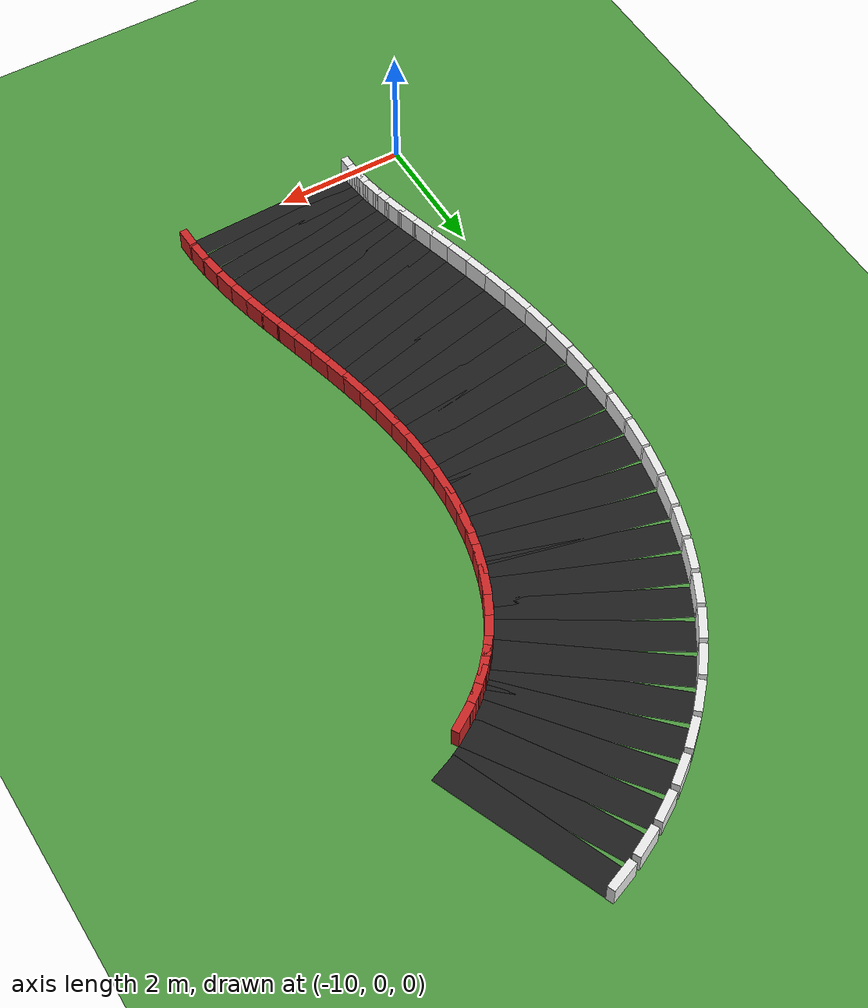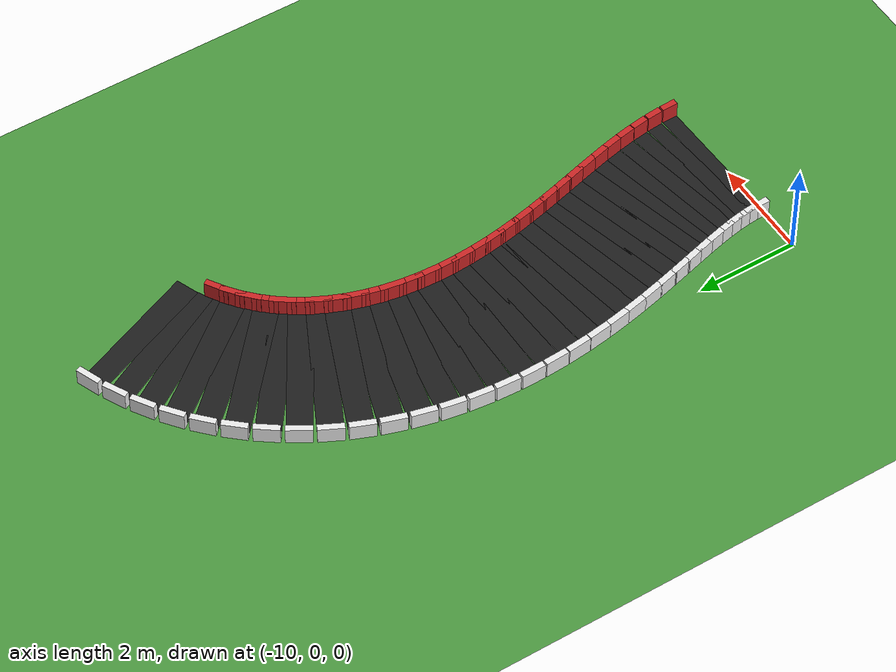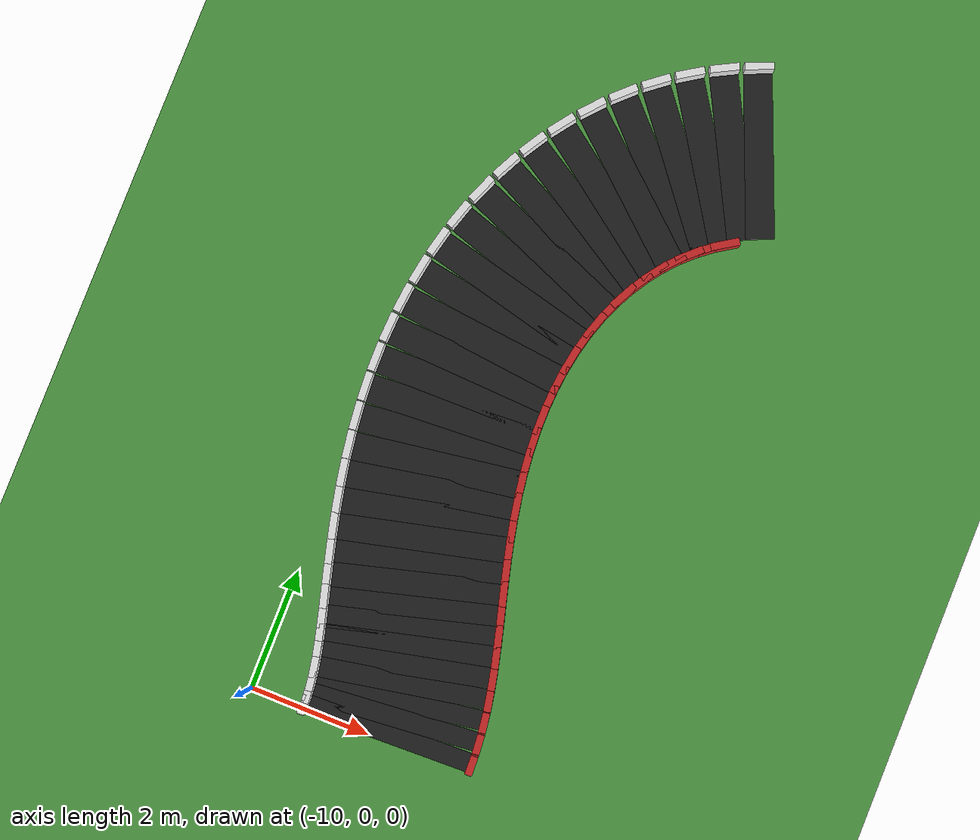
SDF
<sdf version="1.7">
 <world name="rl_track">
  <include><uri>model://sun</uri></include>
  <model name="ground">
   <static>true</static>
   <link name="link">
    <collision name="collision">
     <geometry><plane><normal>0 0 1</normal><size>40 40</size></plane></geometry>
    </collision>
    <visual name="visual">
     <geometry><plane><normal>0 0 1</normal><size>40 40</size></plane></geometry>
     <material>
      <script><uri>file://media/materials/scripts/gazebo.material</uri><name>Gazebo/Grass</name></script>
     </material>
    </visual>
   </link>
  </model>
  <model name="track">
   <static>true</static>
   <link name="road_058">
    <pose>-5.569259 10.929562 0.003000 0 0 -2.758059784</pose>
    <visual name="visual">
     <geometry><box><size>0.469884 2.700000 0.006000</size></box></geometry>
     <material>
      <script><uri>file://media/materials/scripts/gazebo.material</uri><name>Gazebo/Black</name></script>
     </material>
    </visual>
   </link>
   <link name="inner_wall_058">
    <pose>-6.096879 12.237123 0.175000 0 0 -2.758059784</pose>
    <collision name="collision">
     <geometry><box><size>0.479884 0.120000 0.350000</size></box></geometry>
     <surface><contact><ode><kp>1000000</kp><kd>10</kd></ode></contact></surface>
    </collision>
    <visual name="visual">
     <geometry><box><size>0.479884 0.120000 0.350000</size></box></geometry>
     <material>
      <script><uri>file://media/materials/scripts/gazebo.material</uri><name>Gazebo/White</name></script>
     </material>
    </visual>
   </link>
   <link name="road_059">
    <pose>-5.959293 10.750622 0.003000 0 0 -2.664796579</pose>
    <visual name="visual">
     <geometry><box><size>0.469294 2.700000 0.006000</size></box></geometry>
     <material>
      <script><uri>file://media/materials/scripts/gazebo.material</uri><name>Gazebo/Black</name></script>
     </material>
    </visual>
   </link>
   <link name="inner_wall_059">
    <pose>-6.606391 12.003364 0.175000 0 0 -2.664796579</pose>
    <collision name="collision">
     <geometry><box><size>0.479294 0.120000 0.350000</size></box></geometry>
     <surface><contact><ode><kp>1000000</kp><kd>10</kd></ode></contact></surface>
    </collision>
    <visual name="visual">
     <geometry><box><size>0.479294 0.120000 0.350000</size></box></geometry>
     <material>
      <script><uri>file://media/materials/scripts/gazebo.material</uri><name>Gazebo/White</name></script>
     </material>
    </visual>
   </link>
   <link name="road_060">
    <pose>-6.330665 10.536209 0.003000 0 0 -2.571191177</pose>
    <visual name="visual">
     <geometry><box><size>0.469294 2.700000 0.006000</size></box></geometry>
     <material>
      <script><uri>file://media/materials/scripts/gazebo.material</uri><name>Gazebo/Black</name></script>
     </material>
    </visual>
   </link>
   <link name="inner_wall_060">
    <pose>-7.092023 11.722984 0.175000 0 0 -2.571191177</pose>
    <collision name="collision">
     <geometry><box><size>0.479294 0.120000 0.350000</size></box></geometry>
     <surface><contact><ode><kp>1000000</kp><kd>10</kd></ode></contact></surface>
    </collision>
    <visual name="visual">
     <geometry><box><size>0.479294 0.120000 0.350000</size></box></geometry>
     <material>
      <script><uri>file://media/materials/scripts/gazebo.material</uri><name>Gazebo/White</name></script>
     </material>
    </visual>
   </link>
   <link name="outer_wall_060">
    <pose>-5.569307 9.349435 0.175000 0 0 -2.571191177</pose>
    <collision name="collision">
     <geometry><box><size>0.479294 0.120000 0.350000</size></box></geometry>
     <surface><contact><ode><kp>1000000</kp><kd>10</kd></ode></contact></surface>
    </collision>
    <visual name="visual">
     <geometry><box><size>0.479294 0.120000 0.350000</size></box></geometry>
     <material>
      <script><uri>file://media/materials/scripts/gazebo.material</uri><name>Gazebo/Red</name></script>
     </material>
    </visual>
   </link>
   <link name="road_061">
    <pose>-6.680649 10.287900 0.003000 0 0 -2.477927972</pose>
    <visual name="visual">
     <geometry><box><size>0.469884 2.700000 0.006000</size></box></geometry>
     <material>
      <script><uri>file://media/materials/scripts/gazebo.material</uri><name>Gazebo/Black</name></script>
     </material>
    </visual>
   </link>
   <link name="inner_wall_061">
    <pose>-7.549220 11.398614 0.175000 0 0 -2.477927972</pose>
    <collision name="collision">
     <geometry><box><size>0.479884 0.120000 0.350000</size></box></geometry>
     <surface><contact><ode><kp>1000000</kp><kd>10</kd></ode></contact></surface>
    </collision>
    <visual name="visual">
     <geometry><box><size>0.479884 0.120000 0.350000</size></box></geometry>
     <material>
      <script><uri>file://media/materials/scripts/gazebo.material</uri><name>Gazebo/White</name></script>
     </material>
    </visual>
   </link>
   <link name="outer_wall_061">
    <pose>-5.812078 9.177187 0.175000 0 0 -2.477927972</pose>
    <collision name="collision">
     <geometry><box><size>0.479884 0.120000 0.350000</size></box></geometry>
     <surface><contact><ode><kp>1000000</kp><kd>10</kd></ode></contact></surface>
    </collision>
    <visual name="visual">
     <geometry><box><size>0.479884 0.120000 0.350000</size></box></geometry>
     <material>
      <script><uri>file://media/materials/scripts/gazebo.material</uri><name>Gazebo/Red</name></script>
     </material>
    </visual>
   </link>
   <link name="road_062">
    <pose>-7.006779 10.007666 0.003000 0 0 -2.385676328</pose>
    <visual name="visual">
     <geometry><box><size>0.471014 2.700000 0.006000</size></box></geometry>
     <material>
      <script><uri>file://media/materials/scripts/gazebo.material</uri><name>Gazebo/Black</name></script>
     </material>
    </visual>
   </link>
   <link name="inner_wall_062">
    <pose>-7.973977 11.033643 0.175000 0 0 -2.385676328</pose>
    <collision name="collision">
     <geometry><box><size>0.481014 0.120000 0.350000</size></box></geometry>
     <surface><contact><ode><kp>1000000</kp><kd>10</kd></ode></contact></surface>
    </collision>
    <visual name="visual">
     <geometry><box><size>0.481014 0.120000 0.350000</size></box></geometry>
     <material>
      <script><uri>file://media/materials/scripts/gazebo.material</uri><name>Gazebo/White</name></script>
     </material>
    </visual>
   </link>
   <link name="outer_wall_062">
    <pose>-6.039582 8.981689 0.175000 0 0 -2.385676328</pose>
    <collision name="collision">
     <geometry><box><size>0.481014 0.120000 0.350000</size></box></geometry>
     <surface><contact><ode><kp>1000000</kp><kd>10</kd></ode></contact></surface>
    </collision>
    <visual name="visual">
     <geometry><box><size>0.481014 0.120000 0.350000</size></box></geometry>
     <material>
      <script><uri>file://media/materials/scripts/gazebo.material</uri><name>Gazebo/Red</name></script>
     </material>
    </visual>
   </link>
   <link name="road_063">
    <pose>-7.306903 9.697839 0.003000 0 0 -2.295062581</pose>
    <visual name="visual">
     <geometry><box><size>0.472582 2.700000 0.006000</size></box></geometry>
     <material>
      <script><uri>file://media/materials/scripts/gazebo.material</uri><name>Gazebo/Black</name></script>
     </material>
    </visual>
   </link>
   <link name="inner_wall_063">
    <pose>-8.362973 10.632085 0.175000 0 0 -2.295062581</pose>
    <collision name="collision">
     <geometry><box><size>0.482582 0.120000 0.350000</size></box></geometry>
     <surface><contact><ode><kp>1000000</kp><kd>10</kd></ode></contact></surface>
    </collision>
    <visual name="visual">
     <geometry><box><size>0.482582 0.120000 0.350000</size></box></geometry>
     <material>
      <script><uri>file://media/materials/scripts/gazebo.material</uri><name>Gazebo/White</name></script>
     </material>
    </visual>
   </link>
   <link name="outer_wall_063">
    <pose>-6.250833 8.763593 0.175000 0 0 -2.295062581</pose>
    <collision name="collision">
     <geometry><box><size>0.482582 0.120000 0.350000</size></box></geometry>
     <surface><contact><ode><kp>1000000</kp><kd>10</kd></ode></contact></surface>
    </collision>
    <visual name="visual">
     <geometry><box><size>0.482582 0.120000 0.350000</size></box></geometry>
     <material>
      <script><uri>file://media/materials/scripts/gazebo.material</uri><name>Gazebo/Red</name></script>
     </material>
    </visual>
   </link>
   <link name="road_064">
    <pose>-7.579216 9.361068 0.003000 0 0 -2.206647763</pose>
    <visual name="visual">
     <geometry><box><size>0.474449 2.700000 0.006000</size></box></geometry>
     <material>
      <script><uri>file://media/materials/scripts/gazebo.material</uri><name>Gazebo/Black</name></script>
     </material>
    </visual>
   </link>
   <link name="inner_wall_064">
    <pose>-8.713655 10.198415 0.175000 0 0 -2.206647763</pose>
    <collision name="collision">
     <geometry><box><size>0.484449 0.120000 0.350000</size></box></geometry>
     <surface><contact><ode><kp>1000000</kp><kd>10</kd></ode></contact></surface>
    </collision>
    <visual name="visual">
     <geometry><box><size>0.484449 0.120000 0.350000</size></box></geometry>
     <material>
      <script><uri>file://media/materials/scripts/gazebo.material</uri><name>Gazebo/White</name></script>
     </material>
    </visual>
   </link>
   <link name="outer_wall_064">
    <pose>-6.444778 8.523722 0.175000 0 0 -2.206647763</pose>
    <collision name="collision">
     <geometry><box><size>0.484449 0.120000 0.350000</size></box></geometry>
     <surface><contact><ode><kp>1000000</kp><kd>10</kd></ode></contact></surface>
    </collision>
    <visual name="visual">
     <geometry><box><size>0.484449 0.120000 0.350000</size></box></geometry>
     <material>
      <script><uri>file://media/materials/scripts/gazebo.material</uri><name>Gazebo/Red</name></script>
     </material>
    </visual>
   </link>
   <link name="road_065">
    <pose>-7.822301 9.000272 0.003000 0 0 -2.120913435</pose>
    <visual name="visual">
     <geometry><box><size>0.476441 2.700000 0.006000</size></box></geometry>
     <material>
      <script><uri>file://media/materials/scripts/gazebo.material</uri><name>Gazebo/Black</name></script>
     </material>
    </visual>
   </link>
   <link name="inner_wall_065">
    <pose>-9.024274 9.737401 0.175000 0 0 -2.120913435</pose>
    <collision name="collision">
     <geometry><box><size>0.486441 0.120000 0.350000</size></box></geometry>
     <surface><contact><ode><kp>1000000</kp><kd>10</kd></ode></contact></surface>
    </collision>
    <visual name="visual">
     <geometry><box><size>0.486441 0.120000 0.350000</size></box></geometry>
     <material>
      <script><uri>file://media/materials/scripts/gazebo.material</uri><name>Gazebo/White</name></script>
     </material>
    </visual>
   </link>
   <link name="outer_wall_065">
    <pose>-6.620328 8.263142 0.175000 0 0 -2.120913435</pose>
    <collision name="collision">
     <geometry><box><size>0.486441 0.120000 0.350000</size></box></geometry>
     <surface><contact><ode><kp>1000000</kp><kd>10</kd></ode></contact></surface>
    </collision>
    <visual name="visual">
     <geometry><box><size>0.486441 0.120000 0.350000</size></box></geometry>
     <material>
      <script><uri>file://media/materials/scripts/gazebo.material</uri><name>Gazebo/Red</name></script>
     </material>
    </visual>
   </link>
   <link name="road_066">
    <pose>-8.035150 8.618582 0.003000 0 0 -2.038256448</pose>
    <visual name="visual">
     <geometry><box><size>0.478358 2.700000 0.006000</size></box></geometry>
     <material>
      <script><uri>file://media/materials/scripts/gazebo.material</uri><name>Gazebo/Black</name></script>
     </material>
    </visual>
   </link>
   <link name="inner_wall_066">
    <pose>-9.293879 9.253957 0.175000 0 0 -2.038256448</pose>
    <collision name="collision">
     <geometry><box><size>0.488358 0.120000 0.350000</size></box></geometry>
     <surface><contact><ode><kp>1000000</kp><kd>10</kd></ode></contact></surface>
    </collision>
    <visual name="visual">
     <geometry><box><size>0.488358 0.120000 0.350000</size></box></geometry>
     <material>
      <script><uri>file://media/materials/scripts/gazebo.material</uri><name>Gazebo/White</name></script>
     </material>
    </visual>
   </link>
   <link name="outer_wall_066">
    <pose>-6.776421 7.983207 0.175000 0 0 -2.038256448</pose>
    <collision name="collision">
     <geometry><box><size>0.488358 0.120000 0.350000</size></box></geometry>
     <surface><contact><ode><kp>1000000</kp><kd>10</kd></ode></contact></surface>
    </collision>
    <visual name="visual">
     <geometry><box><size>0.488358 0.120000 0.350000</size></box></geometry>
     <material>
      <script><uri>file://media/materials/scripts/gazebo.material</uri><name>Gazebo/Red</name></script>
     </material>
    </visual>
   </link>
   <link name="road_067">
    <pose>-8.217190 8.219290 0.003000 0 0 -1.958991925</pose>
    <visual name="visual">
     <geometry><box><size>0.479992 2.700000 0.006000</size></box></geometry>
     <material>
      <script><uri>file://media/materials/scripts/gazebo.material</uri><name>Gazebo/Black</name></script>
     </material>
    </visual>
   </link>
   <link name="inner_wall_067">
    <pose>-9.522276 8.753002 0.175000 0 0 -1.958991925</pose>
    <collision name="collision">
     <geometry><box><size>0.489992 0.120000 0.350000</size></box></geometry>
     <surface><contact><ode><kp>1000000</kp><kd>10</kd></ode></contact></surface>
    </collision>
    <visual name="visual">
     <geometry><box><size>0.489992 0.120000 0.350000</size></box></geometry>
     <material>
      <script><uri>file://media/materials/scripts/gazebo.material</uri><name>Gazebo/White</name></script>
     </material>
    </visual>
   </link>
   <link name="outer_wall_067">
    <pose>-6.912103 7.685579 0.175000 0 0 -1.958991925</pose>
    <collision name="collision">
     <geometry><box><size>0.489992 0.120000 0.350000</size></box></geometry>
     <surface><contact><ode><kp>1000000</kp><kd>10</kd></ode></contact></surface>
    </collision>
    <visual name="visual">
     <geometry><box><size>0.489992 0.120000 0.350000</size></box></geometry>
     <material>
      <script><uri>file://media/materials/scripts/gazebo.material</uri><name>Gazebo/Red</name></script>
     </material>
    </visual>
   </link>
   <link name="road_068">
    <pose>-8.368286 7.805786 0.003000 0 0 -1.883362816</pose>
    <visual name="visual">
     <geometry><box><size>0.481129 2.700000 0.006000</size></box></geometry>
     <material>
      <script><uri>file://media/materials/scripts/gazebo.material</uri><name>Gazebo/Black</name></script>
     </material>
    </visual>
   </link>
   <link name="inner_wall_068">
    <pose>-9.709968 8.239363 0.175000 0 0 -1.883362816</pose>
    <collision name="collision">
     <geometry><box><size>0.491129 0.120000 0.350000</size></box></geometry>
     <surface><contact><ode><kp>1000000</kp><kd>10</kd></ode></contact></surface>
    </collision>
    <visual name="visual">
     <geometry><box><size>0.491129 0.120000 0.350000</size></box></geometry>
     <material>
      <script><uri>file://media/materials/scripts/gazebo.material</uri><name>Gazebo/White</name></script>
     </material>
    </visual>
   </link>
   <link name="outer_wall_068">
    <pose>-7.026604 7.372208 0.175000 0 0 -1.883362816</pose>
    <collision name="collision">
     <geometry><box><size>0.491129 0.120000 0.350000</size></box></geometry>
     <surface><contact><ode><kp>1000000</kp><kd>10</kd></ode></contact></surface>
    </collision>
    <visual name="visual">
     <geometry><box><size>0.491129 0.120000 0.350000</size></box></geometry>
     <material>
      <script><uri>file://media/materials/scripts/gazebo.material</uri><name>Gazebo/Red</name></script>
     </material>
    </visual>
   </link>
   <link name="road_069">
    <pose>-8.488753 7.381495 0.003000 0 0 -1.811553942</pose>
    <visual name="visual">
     <geometry><box><size>0.481562 2.700000 0.006000</size></box></geometry>
     <material>
      <script><uri>file://media/materials/scripts/gazebo.material</uri><name>Gazebo/Black</name></script>
     </material>
    </visual>
   </link>
   <link name="inner_wall_069">
    <pose>-9.858085 7.717693 0.175000 0 0 -1.811553942</pose>
    <collision name="collision">
     <geometry><box><size>0.491562 0.120000 0.350000</size></box></geometry>
     <surface><contact><ode><kp>1000000</kp><kd>10</kd></ode></contact></surface>
    </collision>
    <visual name="visual">
     <geometry><box><size>0.491562 0.120000 0.350000</size></box></geometry>
     <material>
      <script><uri>file://media/materials/scripts/gazebo.material</uri><name>Gazebo/White</name></script>
     </material>
    </visual>
   </link>
   <link name="outer_wall_069">
    <pose>-7.119421 7.045297 0.175000 0 0 -1.811553942</pose>
    <collision name="collision">
     <geometry><box><size>0.491562 0.120000 0.350000</size></box></geometry>
     <surface><contact><ode><kp>1000000</kp><kd>10</kd></ode></contact></surface>
    </collision>
    <visual name="visual">
     <geometry><box><size>0.491562 0.120000 0.350000</size></box></geometry>
     <material>
      <script><uri>file://media/materials/scripts/gazebo.material</uri><name>Gazebo/Red</name></script>
     </material>
    </visual>
   </link>
   <link name="road_070">
    <pose>-8.579341 6.949822 0.003000 0 0 -1.743708515</pose>
    <visual name="visual">
     <geometry><box><size>0.481097 2.700000 0.006000</size></box></geometry>
     <material>
      <script><uri>file://media/materials/scripts/gazebo.material</uri><name>Gazebo/Black</name></script>
     </material>
    </visual>
   </link>
   <link name="inner_wall_070">
    <pose>-9.968315 7.192415 0.175000 0 0 -1.743708515</pose>
    <collision name="collision">
     <geometry><box><size>0.491097 0.120000 0.350000</size></box></geometry>
     <surface><contact><ode><kp>1000000</kp><kd>10</kd></ode></contact></surface>
    </collision>
    <visual name="visual">
     <geometry><box><size>0.491097 0.120000 0.350000</size></box></geometry>
     <material>
      <script><uri>file://media/materials/scripts/gazebo.material</uri><name>Gazebo/White</name></script>
     </material>
    </visual>
   </link>
   <link name="outer_wall_070">
    <pose>-7.190367 6.707229 0.175000 0 0 -1.743708515</pose>
    <collision name="collision">
     <geometry><box><size>0.491097 0.120000 0.350000</size></box></geometry>
     <surface><contact><ode><kp>1000000</kp><kd>10</kd></ode></contact></surface>
    </collision>
    <visual name="visual">
     <geometry><box><size>0.491097 0.120000 0.350000</size></box></geometry>
     <material>
      <script><uri>file://media/materials/scripts/gazebo.material</uri><name>Gazebo/Red</name></script>
     </material>
    </visual>
   </link>
   <link name="road_071">
    <pose>-8.641229 6.514089 0.003000 0 0 -1.679945575</pose>
    <visual name="visual">
     <geometry><box><size>0.479564 2.700000 0.006000</size></box></geometry>
     <material>
      <script><uri>file://media/materials/scripts/gazebo.material</uri><name>Gazebo/Black</name></script>
     </material>
    </visual>
   </link>
   <link name="inner_wall_071">
    <pose>-10.042838 6.667684 0.175000 0 0 -1.679945575</pose>
    <collision name="collision">
     <geometry><box><size>0.489564 0.120000 0.350000</size></box></geometry>
     <surface><contact><ode><kp>1000000</kp><kd>10</kd></ode></contact></surface>
    </collision>
    <visual name="visual">
     <geometry><box><size>0.489564 0.120000 0.350000</size></box></geometry>
     <material>
      <script><uri>file://media/materials/scripts/gazebo.material</uri><name>Gazebo/White</name></script>
     </material>
    </visual>
   </link>
   <link name="outer_wall_071">
    <pose>-7.239619 6.360493 0.175000 0 0 -1.679945575</pose>
    <collision name="collision">
     <geometry><box><size>0.489564 0.120000 0.350000</size></box></geometry>
     <surface><contact><ode><kp>1000000</kp><kd>10</kd></ode></contact></surface>
    </collision>
    <visual name="visual">
     <geometry><box><size>0.489564 0.120000 0.350000</size></box></geometry>
     <material>
      <script><uri>file://media/materials/scripts/gazebo.material</uri><name>Gazebo/Red</name></script>
     </material>
    </visual>
   </link>
   <link name="road_072">
    <pose>-8.675994 6.077474 0.003000 0 0 -1.620377263</pose>
    <visual name="visual">
     <geometry><box><size>0.476818 2.700000 0.006000</size></box></geometry>
     <material>
      <script><uri>file://media/materials/scripts/gazebo.material</uri><name>Gazebo/Black</name></script>
     </material>
    </visual>
   </link>
   <link name="inner_wall_072">
    <pose>-10.084262 6.147354 0.175000 0 0 -1.620377263</pose>
    <collision name="collision">
     <geometry><box><size>0.486818 0.120000 0.350000</size></box></geometry>
     <surface><contact><ode><kp>1000000</kp><kd>10</kd></ode></contact></surface>
    </collision>
    <visual name="visual">
     <geometry><box><size>0.486818 0.120000 0.350000</size></box></geometry>
     <material>
      <script><uri>file://media/materials/scripts/gazebo.material</uri><name>Gazebo/White</name></script>
     </material>
    </visual>
   </link>
   <link name="outer_wall_072">
    <pose>-7.267727 6.007593 0.175000 0 0 -1.620377263</pose>
    <collision name="collision">
     <geometry><box><size>0.486818 0.120000 0.350000</size></box></geometry>
     <surface><contact><ode><kp>1000000</kp><kd>10</kd></ode></contact></surface>
    </collision>
    <visual name="visual">
     <geometry><box><size>0.486818 0.120000 0.350000</size></box></geometry>
     <material>
      <script><uri>file://media/materials/scripts/gazebo.material</uri><name>Gazebo/Red</name></script>
     </material>
    </visual>
   </link>
   <link name="road_073">
    <pose>-8.685592 5.642963 0.003000 0 0 -1.565125374</pose>
    <visual name="visual">
     <geometry><box><size>0.472747 2.700000 0.006000</size></box></geometry>
     <material>
      <script><uri>file://media/materials/scripts/gazebo.material</uri><name>Gazebo/Black</name></script>
     </material>
    </visual>
   </link>
   <link name="inner_wall_073">
    <pose>-10.095569 5.634967 0.175000 0 0 -1.565125374</pose>
    <collision name="collision">
     <geometry><box><size>0.482747 0.120000 0.350000</size></box></geometry>
     <surface><contact><ode><kp>1000000</kp><kd>10</kd></ode></contact></surface>
    </collision>
    <visual name="visual">
     <geometry><box><size>0.482747 0.120000 0.350000</size></box></geometry>
     <material>
      <script><uri>file://media/materials/scripts/gazebo.material</uri><name>Gazebo/White</name></script>
     </material>
    </visual>
   </link>
   <link name="outer_wall_073">
    <pose>-7.275615 5.650959 0.175000 0 0 -1.565125374</pose>
    <collision name="collision">
     <geometry><box><size>0.482747 0.120000 0.350000</size></box></geometry>
     <surface><contact><ode><kp>1000000</kp><kd>10</kd></ode></contact></surface>
    </collision>
    <visual name="visual">
     <geometry><box><size>0.482747 0.120000 0.350000</size></box></geometry>
     <material>
      <script><uri>file://media/materials/scripts/gazebo.material</uri><name>Gazebo/Red</name></script>
     </material>
    </visual>
   </link>
   <link name="road_074">
    <pose>-8.672309 5.213297 0.003000 0 0 -1.514337002</pose>
    <visual name="visual">
     <geometry><box><size>0.467274 2.700000 0.006000</size></box></geometry>
     <material>
      <script><uri>file://media/materials/scripts/gazebo.material</uri><name>Gazebo/Black</name></script>
     </material>
    </visual>
   </link>
   <link name="inner_wall_074">
    <pose>-10.080063 5.133731 0.175000 0 0 -1.514337002</pose>
    <collision name="collision">
     <geometry><box><size>0.477274 0.120000 0.350000</size></box></geometry>
     <surface><contact><ode><kp>1000000</kp><kd>10</kd></ode></contact></surface>
    </collision>
    <visual name="visual">
     <geometry><box><size>0.477274 0.120000 0.350000</size></box></geometry>
     <material>
      <script><uri>file://media/materials/scripts/gazebo.material</uri><name>Gazebo/White</name></script>
     </material>
    </visual>
   </link>
   <link name="outer_wall_074">
    <pose>-7.264556 5.292862 0.175000 0 0 -1.514337002</pose>
    <collision name="collision">
     <geometry><box><size>0.477274 0.120000 0.350000</size></box></geometry>
     <surface><contact><ode><kp>1000000</kp><kd>10</kd></ode></contact></surface>
    </collision>
    <visual name="visual">
     <geometry><box><size>0.477274 0.120000 0.350000</size></box></geometry>
     <material>
      <script><uri>file://media/materials/scripts/gazebo.material</uri><name>Gazebo/Red</name></script>
     </material>
    </visual>
   </link>
   <link name="road_075">
    <pose>-8.638728 4.790924 0.003000 0 0 -1.468199328</pose>
    <visual name="visual">
     <geometry><box><size>0.460363 2.700000 0.006000</size></box></geometry>
     <material>
      <script><uri>file://media/materials/scripts/gazebo.material</uri><name>Gazebo/Black</name></script>
     </material>
    </visual>
   </link>
   <link name="inner_wall_075">
    <pose>-10.041313 4.646516 0.175000 0 0 -1.468199328</pose>
    <collision name="collision">
     <geometry><box><size>0.470363 0.120000 0.350000</size></box></geometry>
     <surface><contact><ode><kp>1000000</kp><kd>10</kd></ode></contact></surface>
    </collision>
    <visual name="visual">
     <geometry><box><size>0.470363 0.120000 0.350000</size></box></geometry>
     <material>
      <script><uri>file://media/materials/scripts/gazebo.material</uri><name>Gazebo/White</name></script>
     </material>
    </visual>
   </link>
   <link name="outer_wall_075">
    <pose>-7.236142 4.935332 0.175000 0 0 -1.468199328</pose>
    <collision name="collision">
     <geometry><box><size>0.470363 0.120000 0.350000</size></box></geometry>
     <surface><contact><ode><kp>1000000</kp><kd>10</kd></ode></contact></surface>
    </collision>
    <visual name="visual">
     <geometry><box><size>0.470363 0.120000 0.350000</size></box></geometry>
     <material>
      <script><uri>file://media/materials/scripts/gazebo.material</uri><name>Gazebo/Red</name></script>
     </material>
    </visual>
   </link>
   <link name="road_076">
    <pose>-8.587671 4.377966 0.003000 0 0 -1.426953640</pose>
    <visual name="visual">
     <geometry><box><size>0.452019 2.700000 0.006000</size></box></geometry>
     <material>
      <script><uri>file://media/materials/scripts/gazebo.material</uri><name>Gazebo/Black</name></script>
     </material>
    </visual>
   </link>
   <link name="inner_wall_076">
    <pose>-9.983109 4.175846 0.175000 0 0 -1.426953640</pose>
    <collision name="collision">
     <geometry><box><size>0.462019 0.120000 0.350000</size></box></geometry>
     <surface><contact><ode><kp>1000000</kp><kd>10</kd></ode></contact></surface>
    </collision>
    <visual name="visual">
     <geometry><box><size>0.462019 0.120000 0.350000</size></box></geometry>
     <material>
      <script><uri>file://media/materials/scripts/gazebo.material</uri><name>Gazebo/White</name></script>
     </material>
    </visual>
   </link>
   <link name="outer_wall_076">
    <pose>-7.192233 4.580085 0.175000 0 0 -1.426953640</pose>
    <collision name="collision">
     <geometry><box><size>0.462019 0.120000 0.350000</size></box></geometry>
     <surface><contact><ode><kp>1000000</kp><kd>10</kd></ode></contact></surface>
    </collision>
    <visual name="visual">
     <geometry><box><size>0.462019 0.120000 0.350000</size></box></geometry>
     <material>
      <script><uri>file://media/materials/scripts/gazebo.material</uri><name>Gazebo/Red</name></script>
     </material>
    </visual>
   </link>
   <link name="road_077">
    <pose>-8.522151 3.976183 0.003000 0 0 -1.390908525</pose>
    <visual name="visual">
     <geometry><box><size>0.442292 2.700000 0.006000</size></box></geometry>
     <material>
      <script><uri>file://media/materials/scripts/gazebo.material</uri><name>Gazebo/Black</name></script>
     </material>
    </visual>
   </link>
   <link name="inner_wall_077">
    <pose>-9.909399 3.723907 0.175000 0 0 -1.390908525</pose>
    <collision name="collision">
     <geometry><box><size>0.452292 0.120000 0.350000</size></box></geometry>
     <surface><contact><ode><kp>1000000</kp><kd>10</kd></ode></contact></surface>
    </collision>
    <visual name="visual">
     <geometry><box><size>0.452292 0.120000 0.350000</size></box></geometry>
     <material>
      <script><uri>file://media/materials/scripts/gazebo.material</uri><name>Gazebo/White</name></script>
     </material>
    </visual>
   </link>
   <link name="outer_wall_077">
    <pose>-7.134903 4.228459 0.175000 0 0 -1.390908525</pose>
    <collision name="collision">
     <geometry><box><size>0.452292 0.120000 0.350000</size></box></geometry>
     <surface><contact><ode><kp>1000000</kp><kd>10</kd></ode></contact></surface>
    </collision>
    <visual name="visual">
     <geometry><box><size>0.452292 0.120000 0.350000</size></box></geometry>
     <material>
      <script><uri>file://media/materials/scripts/gazebo.material</uri><name>Gazebo/Red</name></script>
     </material>
    </visual>
   </link>
   <link name="road_078">
    <pose>-8.445313 3.586953 0.003000 0 0 -1.360451783</pose>
    <visual name="visual">
     <geometry><box><size>0.431283 2.700000 0.006000</size></box></geometry>
     <material>
      <script><uri>file://media/materials/scripts/gazebo.material</uri><name>Gazebo/Black</name></script>
     </material>
    </visual>
   </link>
   <link name="inner_wall_078">
    <pose>-9.824235 3.292550 0.175000 0 0 -1.360451783</pose>
    <collision name="collision">
     <geometry><box><size>0.441283 0.120000 0.350000</size></box></geometry>
     <surface><contact><ode><kp>1000000</kp><kd>10</kd></ode></contact></surface>
    </collision>
    <visual name="visual">
     <geometry><box><size>0.441283 0.120000 0.350000</size></box></geometry>
     <material>
      <script><uri>file://media/materials/scripts/gazebo.material</uri><name>Gazebo/White</name></script>
     </material>
    </visual>
   </link>
   <link name="outer_wall_078">
    <pose>-7.066390 3.881357 0.175000 0 0 -1.360451783</pose>
    <collision name="collision">
     <geometry><box><size>0.441283 0.120000 0.350000</size></box></geometry>
     <surface><contact><ode><kp>1000000</kp><kd>10</kd></ode></contact></surface>
    </collision>
    <visual name="visual">
     <geometry><box><size>0.441283 0.120000 0.350000</size></box></geometry>
     <material>
      <script><uri>file://media/materials/scripts/gazebo.material</uri><name>Gazebo/Red</name></script>
     </material>
    </visual>
   </link>
   <link name="road_079">
    <pose>-8.360372 3.211251 0.003000 0 0 -1.336059794</pose>
    <visual name="visual">
     <geometry><box><size>0.419143 2.700000 0.006000</size></box></geometry>
     <material>
      <script><uri>file://media/materials/scripts/gazebo.material</uri><name>Gazebo/Black</name></script>
     </material>
    </visual>
   </link>
   <link name="inner_wall_079">
    <pose>-9.731703 2.883304 0.175000 0 0 -1.336059794</pose>
    <collision name="collision">
     <geometry><box><size>0.429143 0.120000 0.350000</size></box></geometry>
     <surface><contact><ode><kp>1000000</kp><kd>10</kd></ode></contact></surface>
    </collision>
    <visual name="visual">
     <geometry><box><size>0.429143 0.120000 0.350000</size></box></geometry>
     <material>
      <script><uri>file://media/materials/scripts/gazebo.material</uri><name>Gazebo/White</name></script>
     </material>
    </visual>
   </link>
   <link name="outer_wall_079">
    <pose>-6.989040 3.539198 0.175000 0 0 -1.336059794</pose>
    <collision name="collision">
     <geometry><box><size>0.429143 0.120000 0.350000</size></box></geometry>
     <surface><contact><ode><kp>1000000</kp><kd>10</kd></ode></contact></surface>
    </collision>
    <visual name="visual">
     <geometry><box><size>0.429143 0.120000 0.350000</size></box></geometry>
     <material>
      <script><uri>file://media/materials/scripts/gazebo.material</uri><name>Gazebo/Red</name></script>
     </material>
    </visual>
   </link>
   <link name="road_080">
    <pose>-8.270553 2.849643 0.003000 0 0 -1.318301783</pose>
    <visual name="visual">
     <geometry><box><size>0.406078 2.700000 0.006000</size></box></geometry>
     <material>
      <script><uri>file://media/materials/scripts/gazebo.material</uri><name>Gazebo/Black</name></script>
     </material>
    </visual>
   </link>
   <link name="inner_wall_080">
    <pose>-9.635845 2.497397 0.175000 0 0 -1.318301783</pose>
    <collision name="collision">
     <geometry><box><size>0.416078 0.120000 0.350000</size></box></geometry>
     <surface><contact><ode><kp>1000000</kp><kd>10</kd></ode></contact></surface>
    </collision>
    <visual name="visual">
     <geometry><box><size>0.416078 0.120000 0.350000</size></box></geometry>
     <material>
      <script><uri>file://media/materials/scripts/gazebo.material</uri><name>Gazebo/White</name></script>
     </material>
    </visual>
   </link>
   <link name="outer_wall_080">
    <pose>-6.905261 3.201890 0.175000 0 0 -1.318301783</pose>
    <collision name="collision">
     <geometry><box><size>0.416078 0.120000 0.350000</size></box></geometry>
     <surface><contact><ode><kp>1000000</kp><kd>10</kd></ode></contact></surface>
    </collision>
    <visual name="visual">
     <geometry><box><size>0.416078 0.120000 0.350000</size></box></geometry>
     <material>
      <script><uri>file://media/materials/scripts/gazebo.material</uri><name>Gazebo/Red</name></script>
     </material>
    </visual>
   </link>
   <link name="road_081">
    <pose>-8.179030 2.502288 0.003000 0 0 -1.307834336</pose>
    <visual name="visual">
     <geometry><box><size>0.392353 2.700000 0.006000</size></box></geometry>
     <material>
      <script><uri>file://media/materials/scripts/gazebo.material</uri><name>Gazebo/Black</name></script>
     </material>
    </visual>
   </link>
   <link name="inner_wall_081">
    <pose>-9.540561 2.135770 0.175000 0 0 -1.307834336</pose>
    <collision name="collision">
     <geometry><box><size>0.402353 0.120000 0.350000</size></box></geometry>
     <surface><contact><ode><kp>1000000</kp><kd>10</kd></ode></contact></surface>
    </collision>
    <visual name="visual">
     <geometry><box><size>0.402353 0.120000 0.350000</size></box></geometry>
     <material>
      <script><uri>file://media/materials/scripts/gazebo.material</uri><name>Gazebo/White</name></script>
     </material>
    </visual>
   </link>
   <link name="outer_wall_081">
    <pose>-6.817500 2.868806 0.175000 0 0 -1.307834336</pose>
    <collision name="collision">
     <geometry><box><size>0.402353 0.120000 0.350000</size></box></geometry>
     <surface><contact><ode><kp>1000000</kp><kd>10</kd></ode></contact></surface>
    </collision>
    <visual name="visual">
     <geometry><box><size>0.402353 0.120000 0.350000</size></box></geometry>
     <material>
      <script><uri>file://media/materials/scripts/gazebo.material</uri><name>Gazebo/Red</name></script>
     </material>
    </visual>
   </link>
   <link name="road_082">
    <pose>-8.088865 2.168943 0.003000 0 0 -1.305378576</pose>
    <visual name="visual">
     <geometry><box><size>0.378296 2.700000 0.006000</size></box></geometry>
     <material>
      <script><uri>file://media/materials/scripts/gazebo.material</uri><name>Gazebo/Black</name></script>
     </material>
    </visual>
   </link>
   <link name="inner_wall_082">
    <pose>-9.449491 1.799082 0.175000 0 0 -1.305378576</pose>
    <collision name="collision">
     <geometry><box><size>0.388296 0.120000 0.350000</size></box></geometry>
     <surface><contact><ode><kp>1000000</kp><kd>10</kd></ode></contact></surface>
    </collision>
    <visual name="visual">
     <geometry><box><size>0.388296 0.120000 0.350000</size></box></geometry>
     <material>
      <script><uri>file://media/materials/scripts/gazebo.material</uri><name>Gazebo/White</name></script>
     </material>
    </visual>
   </link>
   <link name="outer_wall_082">
    <pose>-6.728239 2.538803 0.175000 0 0 -1.305378576</pose>
    <collision name="collision">
     <geometry><box><size>0.388296 0.120000 0.350000</size></box></geometry>
     <surface><contact><ode><kp>1000000</kp><kd>10</kd></ode></contact></surface>
    </collision>
    <visual name="visual">
     <geometry><box><size>0.388296 0.120000 0.350000</size></box></geometry>
     <material>
      <script><uri>file://media/materials/scripts/gazebo.material</uri><name>Gazebo/Red</name></script>
     </material>
    </visual>
   </link>
   <link name="road_083">
    <pose>-8.002947 1.848983 0.003000 0 0 -1.311668736</pose>
    <visual name="visual">
     <geometry><box><size>0.364298 2.700000 0.006000</size></box></geometry>
     <material>
      <script><uri>file://media/materials/scripts/gazebo.material</uri><name>Gazebo/Black</name></script>
     </material>
    </visual>
   </link>
   <link name="inner_wall_083">
    <pose>-9.365873 1.487688 0.175000 0 0 -1.311668736</pose>
    <collision name="collision">
     <geometry><box><size>0.374298 0.120000 0.350000</size></box></geometry>
     <surface><contact><ode><kp>1000000</kp><kd>10</kd></ode></contact></surface>
    </collision>
    <visual name="visual">
     <geometry><box><size>0.374298 0.120000 0.350000</size></box></geometry>
     <material>
      <script><uri>file://media/materials/scripts/gazebo.material</uri><name>Gazebo/White</name></script>
     </material>
    </visual>
   </link>
   <link name="outer_wall_083">
    <pose>-6.640022 2.210277 0.175000 0 0 -1.311668736</pose>
    <collision name="collision">
     <geometry><box><size>0.374298 0.120000 0.350000</size></box></geometry>
     <surface><contact><ode><kp>1000000</kp><kd>10</kd></ode></contact></surface>
    </collision>
    <visual name="visual">
     <geometry><box><size>0.374298 0.120000 0.350000</size></box></geometry>
     <material>
      <script><uri>file://media/materials/scripts/gazebo.material</uri><name>Gazebo/Red</name></script>
     </material>
    </visual>
   </link>
   <link name="road_084">
    <pose>-7.923939 1.541423 0.003000 0 0 -1.327357874</pose>
    <visual name="visual">
     <geometry><box><size>0.350813 2.700000 0.006000</size></box></geometry>
     <material>
      <script><uri>file://media/materials/scripts/gazebo.material</uri><name>Gazebo/Black</name></script>
     </material>
    </visual>
   </link>
   <link name="inner_wall_084">
    <pose>-9.292365 1.201555 0.175000 0 0 -1.327357874</pose>
    <collision name="collision">
     <geometry><box><size>0.360813 0.120000 0.350000</size></box></geometry>
     <surface><contact><ode><kp>1000000</kp><kd>10</kd></ode></contact></surface>
    </collision>
    <visual name="visual">
     <geometry><box><size>0.360813 0.120000 0.350000</size></box></geometry>
     <material>
      <script><uri>file://media/materials/scripts/gazebo.material</uri><name>Gazebo/White</name></script>
     </material>
    </visual>
   </link>
   <link name="outer_wall_084">
    <pose>-6.555513 1.881291 0.175000 0 0 -1.327357874</pose>
    <collision name="collision">
     <geometry><box><size>0.360813 0.120000 0.350000</size></box></geometry>
     <surface><contact><ode><kp>1000000</kp><kd>10</kd></ode></contact></surface>
    </collision>
    <visual name="visual">
     <geometry><box><size>0.360813 0.120000 0.350000</size></box></geometry>
     <material>
      <script><uri>file://media/materials/scripts/gazebo.material</uri><name>Gazebo/Red</name></script>
     </material>
    </visual>
   </link>
   <link name="road_085">
    <pose>-7.854227 1.244953 0.003000 0 0 -1.352867364</pose>
    <visual name="visual">
     <geometry><box><size>0.338349 2.700000 0.006000</size></box></geometry>
     <material>
      <script><uri>file://media/materials/scripts/gazebo.material</uri><name>Gazebo/Black</name></script>
     </material>
    </visual>
   </link>
   <link name="inner_wall_085">
    <pose>-9.230877 0.940100 0.175000 0 0 -1.352867364</pose>
    <collision name="collision">
     <geometry><box><size>0.348349 0.120000 0.350000</size></box></geometry>
     <surface><contact><ode><kp>1000000</kp><kd>10</kd></ode></contact></surface>
    </collision>
    <visual name="visual">
     <geometry><box><size>0.348349 0.120000 0.350000</size></box></geometry>
     <material>
      <script><uri>file://media/materials/scripts/gazebo.material</uri><name>Gazebo/White</name></script>
     </material>
    </visual>
   </link>
   <link name="outer_wall_085">
    <pose>-6.477577 1.549806 0.175000 0 0 -1.352867364</pose>
    <collision name="collision">
     <geometry><box><size>0.348349 0.120000 0.350000</size></box></geometry>
     <surface><contact><ode><kp>1000000</kp><kd>10</kd></ode></contact></surface>
    </collision>
    <visual name="visual">
     <geometry><box><size>0.348349 0.120000 0.350000</size></box></geometry>
     <material>
      <script><uri>file://media/materials/scripts/gazebo.material</uri><name>Gazebo/Red</name></script>
     </material>
    </visual>
   </link>
   <link name="road_086">
    <pose>-7.795873 0.957971 0.003000 0 0 -1.388177983</pose>
    <visual name="visual">
     <geometry><box><size>0.327451 2.700000 0.006000</size></box></geometry>
     <material>
      <script><uri>file://media/materials/scripts/gazebo.material</uri><name>Gazebo/Black</name></script>
     </material>
    </visual>
   </link>
   <link name="inner_wall_086">
    <pose>-9.182427 0.701908 0.175000 0 0 -1.388177983</pose>
    <collision name="collision">
     <geometry><box><size>0.337451 0.120000 0.350000</size></box></geometry>
     <surface><contact><ode><kp>1000000</kp><kd>10</kd></ode></contact></surface>
    </collision>
    <visual name="visual">
     <geometry><box><size>0.337451 0.120000 0.350000</size></box></geometry>
     <material>
      <script><uri>file://media/materials/scripts/gazebo.material</uri><name>Gazebo/White</name></script>
     </material>
    </visual>
   </link>
   <link name="outer_wall_086">
    <pose>-6.409319 1.214034 0.175000 0 0 -1.388177983</pose>
    <collision name="collision">
     <geometry><box><size>0.337451 0.120000 0.350000</size></box></geometry>
     <surface><contact><ode><kp>1000000</kp><kd>10</kd></ode></contact></surface>
    </collision>
    <visual name="visual">
     <geometry><box><size>0.337451 0.120000 0.350000</size></box></geometry>
     <material>
      <script><uri>file://media/materials/scripts/gazebo.material</uri><name>Gazebo/Red</name></script>
     </material>
    </visual>
   </link>
   <link name="road_087">
    <pose>-7.750577 0.678633 0.003000 0 0 -1.432589041</pose>
    <visual name="visual">
     <geometry><box><size>0.318662 2.700000 0.006000</size></box></geometry>
     <material>
      <script><uri>file://media/materials/scripts/gazebo.material</uri><name>Gazebo/Black</name></script>
     </material>
    </visual>
   </link>
   <link name="inner_wall_087">
    <pose>-9.147132 0.484381 0.175000 0 0 -1.432589041</pose>
    <collision name="collision">
     <geometry><box><size>0.328662 0.120000 0.350000</size></box></geometry>
     <surface><contact><ode><kp>1000000</kp><kd>10</kd></ode></contact></surface>
    </collision>
    <visual name="visual">
     <geometry><box><size>0.328662 0.120000 0.350000</size></box></geometry>
     <material>
      <script><uri>file://media/materials/scripts/gazebo.material</uri><name>Gazebo/White</name></script>
     </material>
    </visual>
   </link>
   <link name="outer_wall_087">
    <pose>-6.354022 0.872886 0.175000 0 0 -1.432589041</pose>
    <collision name="collision">
     <geometry><box><size>0.328662 0.120000 0.350000</size></box></geometry>
     <surface><contact><ode><kp>1000000</kp><kd>10</kd></ode></contact></surface>
    </collision>
    <visual name="visual">
     <geometry><box><size>0.328662 0.120000 0.350000</size></box></geometry>
     <material>
      <script><uri>file://media/materials/scripts/gazebo.material</uri><name>Gazebo/Red</name></script>
     </material>
    </visual>
   </link>
   <link name="road_088">
    <pose>-7.719641 0.404898 0.003000 0 0 -1.484517619</pose>
    <visual name="visual">
     <geometry><box><size>0.312479 2.700000 0.006000</size></box></geometry>
     <material>
      <script><uri>file://media/materials/scripts/gazebo.material</uri><name>Gazebo/Black</name></script>
     </material>
    </visual>
   </link>
   <link name="inner_wall_088">
    <pose>-9.124397 0.283396 0.175000 0 0 -1.484517619</pose>
    <collision name="collision">
     <geometry><box><size>0.322479 0.120000 0.350000</size></box></geometry>
     <surface><contact><ode><kp>1000000</kp><kd>10</kd></ode></contact></surface>
    </collision>
    <visual name="visual">
     <geometry><box><size>0.322479 0.120000 0.350000</size></box></geometry>
     <material>
      <script><uri>file://media/materials/scripts/gazebo.material</uri><name>Gazebo/White</name></script>
     </material>
    </visual>
   </link>
   <link name="outer_wall_088">
    <pose>-6.314886 0.526400 0.175000 0 0 -1.484517619</pose>
    <collision name="collision">
     <geometry><box><size>0.322479 0.120000 0.350000</size></box></geometry>
     <surface><contact><ode><kp>1000000</kp><kd>10</kd></ode></contact></surface>
    </collision>
    <visual name="visual">
     <geometry><box><size>0.322479 0.120000 0.350000</size></box></geometry>
     <material>
      <script><uri>file://media/materials/scripts/gazebo.material</uri><name>Gazebo/Red</name></script>
     </material>
    </visual>
   </link>
   <link name="road_089">
    <pose>-7.703951 0.134583 0.003000 0 0 -1.541449866</pose>
    <visual name="visual">
     <geometry><box><size>0.309282 2.700000 0.006000</size></box></geometry>
     <material>
      <script><uri>file://media/materials/scripts/gazebo.material</uri><name>Gazebo/Black</name></script>
     </material>
    </visual>
   </link>
   <link name="inner_wall_089">
    <pose>-9.113344 0.093210 0.175000 0 0 -1.541449866</pose>
    <collision name="collision">
     <geometry><box><size>0.319282 0.120000 0.350000</size></box></geometry>
     <surface><contact><ode><kp>1000000</kp><kd>10</kd></ode></contact></surface>
    </collision>
    <visual name="visual">
     <geometry><box><size>0.319282 0.120000 0.350000</size></box></geometry>
     <material>
      <script><uri>file://media/materials/scripts/gazebo.material</uri><name>Gazebo/White</name></script>
     </material>
    </visual>
   </link>
   <link name="outer_wall_089">
    <pose>-6.294558 0.175955 0.175000 0 0 -1.541449866</pose>
    <collision name="collision">
     <geometry><box><size>0.319282 0.120000 0.350000</size></box></geometry>
     <surface><contact><ode><kp>1000000</kp><kd>10</kd></ode></contact></surface>
    </collision>
    <visual name="visual">
     <geometry><box><size>0.319282 0.120000 0.350000</size></box></geometry>
     <material>
      <script><uri>file://media/materials/scripts/gazebo.material</uri><name>Gazebo/Red</name></script>
     </material>
    </visual>
   </link>
  </model>
 </world>
</sdf>
